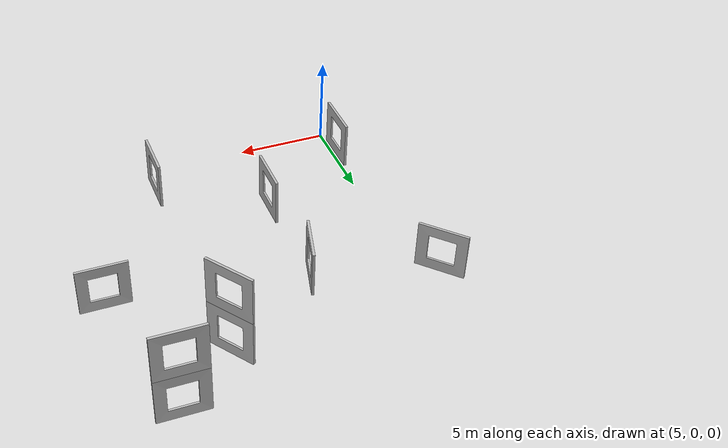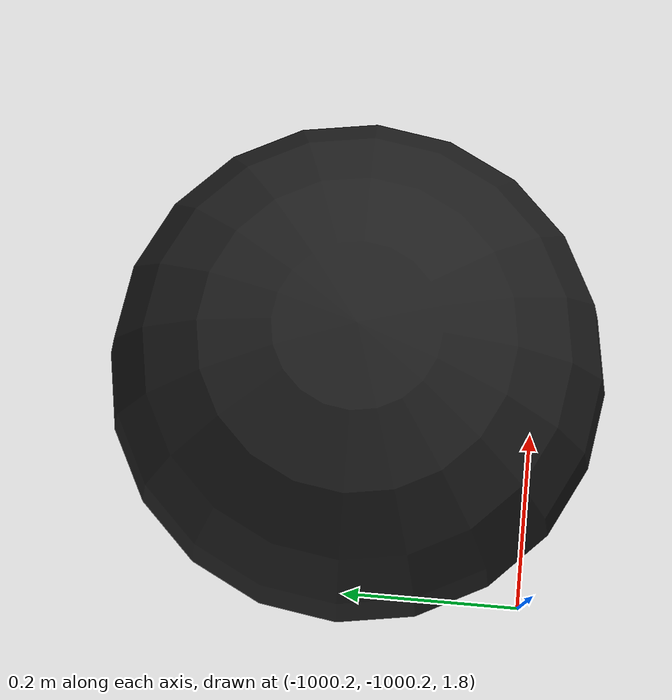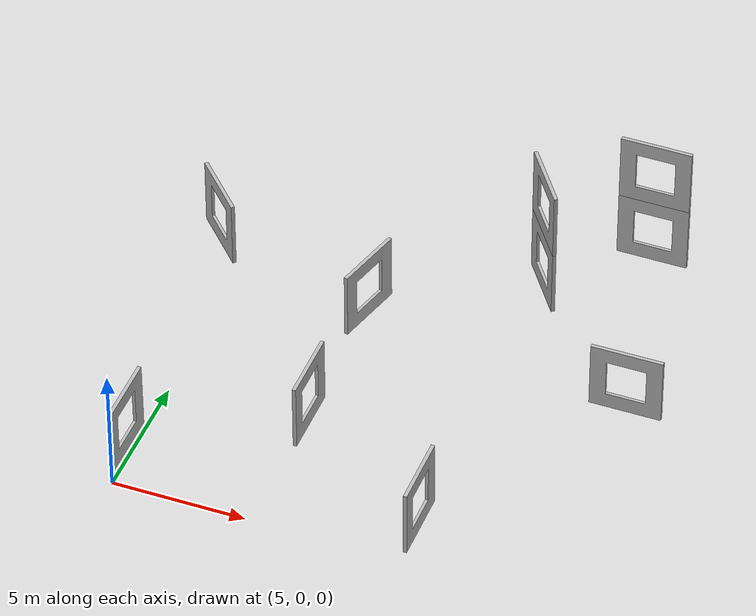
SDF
<sdf version="1.5">
 <world name="default">
  <plugin name="mrs_gazebo_static_transform_republisher_plugin" filename="libMrsGazeboCommonResources_StaticTransformRepublisher.so"/>
  <spherical_coordinates>
   <surface_model>EARTH_WGS84</surface_model>
   <latitude_deg>47.397743</latitude_deg>
   <longitude_deg>8.545594</longitude_deg>
   <elevation>0.0</elevation>
   <heading_deg>0</heading_deg>
  </spherical_coordinates>
  <physics name="default_physics" default="0" type="ode">
   <gravity>0 0 -9.8066</gravity>
   <ode>
    <solver>
     <type>quick</type>
     <iters>10</iters>
     <sor>1.3</sor>
     <use_dynamic_moi_rescaling>0</use_dynamic_moi_rescaling>
    </solver>
    <constraints>
     <cfm>0</cfm>
     <erp>0.2</erp>
     <contact_max_correcting_vel>250</contact_max_correcting_vel>
     <contact_surface_layer>0.004</contact_surface_layer>
    </constraints>
   </ode>
   <max_step_size>0.004</max_step_size>
   <real_time_factor>1</real_time_factor>
   <real_time_update_rate>250</real_time_update_rate>
   <magnetic_field>6.0e-06 2.3e-05 -4.2e-05</magnetic_field>
  </physics>
  <scene><shadows>false</shadows></scene>
  <light name="sun" type="directional">
   <pose>0 0 1000 0.4 0.2 0</pose>
   <diffuse>1 1 1 1</diffuse>
   <specular>0.6 0.6 0.6 1</specular>
   <direction>0.1 0.1 -0.9</direction>
   <attenuation>
    <range>20</range>
    <constant>0.5</constant>
    <linear>0.01</linear>
    <quadratic>0.001</quadratic>
   </attenuation>
  </light>
  <model name="the_void">
   <static>1</static>
   <link name="link">
    <pose>0 0 0.1 0 -0 0</pose>
    <visual name="the_void">
     <pose>0 0 2 0 -0 0</pose>
     <geometry><sphere><radius>0.25</radius></sphere></geometry>
     <material>
      <script><uri>file://media/materials/scripts/Gazebo.material</uri><name>Gazebo/Black</name></script>
     </material>
    </visual>
   </link>
   <pose>-1000 -1000 0 0 0 0</pose>
  </model>
  <plugin name="mrs_gazebo_rviz_cam_synchronizer" filename="libMrsGazeboCommonResources_RvizCameraSynchronizer.so">
   <target_frame_id>gazebo_user_camera</target_frame_id>
   <world_origin_frame_id>uav1/gps_origin</world_origin_frame_id>
   <frame_to_follow>uav1</frame_to_follow>
  </plugin>
  <include><uri>model://gate</uri><pose>3.65 13.13 1.34 0.0 0.0 -0.8093</pose><name>gate0</name></include>
  <include><uri>model://gate</uri><pose>10.16 11.35 1.34 0.0 0.0 1.3077</pose><name>gate1</name></include>
  <include>
   <uri>model://gate</uri>
   <pose>15.59 14.95 1.34 0.0 0.0 -0.9567894959</pose>
   <name>gate2</name>
  </include>
  <include>
   <uri>model://gate</uri>
   <pose>15.59 14.95 4.04 0.0 0.0 -0.9567894959</pose>
   <name>gate3</name>
  </include>
  <include><uri>model://gate</uri><pose>18.79 17.88 4.04 0.0 0.0 -0.007</pose><name>gate4</name></include>
  <include><uri>model://gate</uri><pose>18.79 17.88 1.34 0.0 0.0 -0.007</pose><name>gate5</name></include>
  <include><uri>model://gate</uri><pose>20.51 9.9 1.34 0.0 0.0 0.0</pose><name>gate6</name></include>
  <include><uri>model://gate</uri><pose>15.75 1.83 1.34 0.0 0.0 1.570</pose><name>gate7</name></include>
  <include><uri>model://gate</uri><pose>10.25 5.35 1.34 0.0 0.0 1.570</pose><name>gate8</name></include>
  <include><uri>model://gate</uri><pose>4.75 1.83 1.34 0.0 0.0 1.570</pose><name>gate9</name></include>
 </world>
</sdf>

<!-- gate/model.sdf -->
<sdf version="1.6">
  <model name="gate">
    <static>true</static>
    <link name="link">
      <visual name="visual">
        <geometry>
          <mesh>
            <scale>1 1 1</scale>
            <uri>model://gate/meshes/gate.dae</uri>
          </mesh>
        </geometry>
      </visual>
    </link>
  </model>
</sdf>
